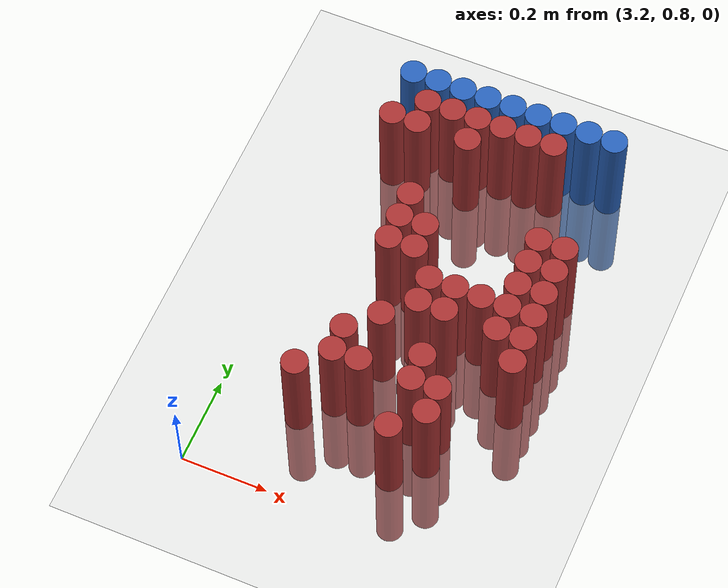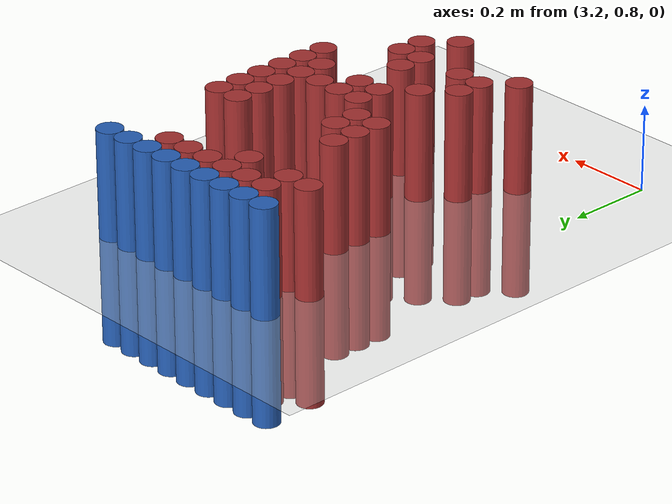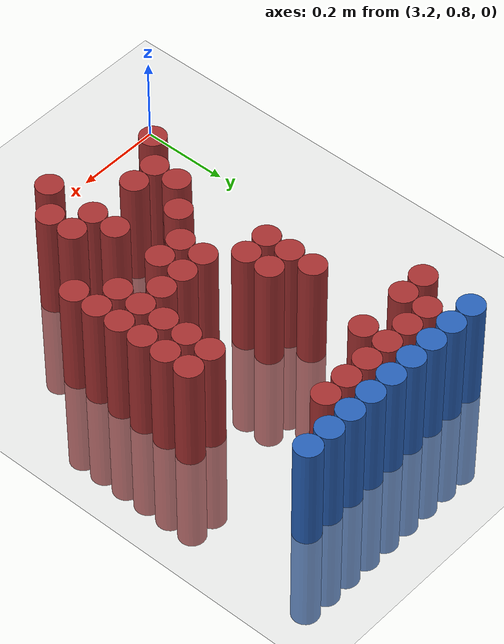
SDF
<sdf version="1.6">
 <world name="default">
  <model name="ground_plane">
   <static>1</static>
   <link name="link">
    <collision name="collision">
     <geometry><plane><normal>0 0 1</normal><size>100 100</size></plane></geometry>
     <surface><friction><ode><mu>100</mu><mu2>50</mu2></ode></friction></surface>
    </collision>
    <visual name="visual">
     <cast_shadows>0</cast_shadows>
     <geometry><plane><normal>0 0 1</normal><size>100 100</size></plane></geometry>
     <material>
      <script><uri>file://media/materials/scripts/gazebo.material</uri><name>Gazebo/Grey</name></script>
     </material>
    </visual>
   </link>
  </model>
  <model name="unit_cylinder_116">
   <static>1</static>
   <pose>3.330000 1.770000 0.000000 0.000000 0.000000 0.000000</pose>
   <link name="link">
    <inertial>
     <mass>1</mass>
     <inertia><ixx>0.145833</ixx><ixy>0</ixy><ixz>0</ixz><iyy>0.145833</iyy><iyz>0</iyz><izz>0.125</izz></inertia>
    </inertial>
    <collision name="collision">
     <geometry><cylinder><radius>0.030000</radius><length>0.5</length></cylinder></geometry>
    </collision>
    <visual name="visual">
     <geometry><cylinder><radius>0.030000</radius><length>0.5</length></cylinder></geometry>
     <material>
      <ambient>0.152000 0.379000 0.720000 1</ambient>
      <diffuse>0.152000 0.379000 0.720000 1</diffuse>
     </material>
     <material>
      <script><name>Gazebo/Grey</name><uri>file://media/materials/scripts/gazebo.material</uri></script>
     </material>
    </visual>
   </link>
  </model>
  <model name="unit_cylinder_117">
   <static>1</static>
   <pose>3.390000 1.770000 0.000000 0.000000 0.000000 0.000000</pose>
   <link name="link">
    <inertial>
     <mass>1</mass>
     <inertia><ixx>0.145833</ixx><ixy>0</ixy><ixz>0</ixz><iyy>0.145833</iyy><iyz>0</iyz><izz>0.125</izz></inertia>
    </inertial>
    <collision name="collision">
     <geometry><cylinder><radius>0.030000</radius><length>0.5</length></cylinder></geometry>
    </collision>
    <visual name="visual">
     <geometry><cylinder><radius>0.030000</radius><length>0.5</length></cylinder></geometry>
     <material>
      <ambient>0.152000 0.379000 0.720000 1</ambient>
      <diffuse>0.152000 0.379000 0.720000 1</diffuse>
     </material>
     <material>
      <script><name>Gazebo/Grey</name><uri>file://media/materials/scripts/gazebo.material</uri></script>
     </material>
    </visual>
   </link>
  </model>
  <model name="unit_cylinder_118">
   <static>1</static>
   <pose>3.450000 1.770000 0.000000 0.000000 0.000000 0.000000</pose>
   <link name="link">
    <inertial>
     <mass>1</mass>
     <inertia><ixx>0.145833</ixx><ixy>0</ixy><ixz>0</ixz><iyy>0.145833</iyy><iyz>0</iyz><izz>0.125</izz></inertia>
    </inertial>
    <collision name="collision">
     <geometry><cylinder><radius>0.030000</radius><length>0.5</length></cylinder></geometry>
    </collision>
    <visual name="visual">
     <geometry><cylinder><radius>0.030000</radius><length>0.5</length></cylinder></geometry>
     <material>
      <ambient>0.152000 0.379000 0.720000 1</ambient>
      <diffuse>0.152000 0.379000 0.720000 1</diffuse>
     </material>
     <material>
      <script><name>Gazebo/Grey</name><uri>file://media/materials/scripts/gazebo.material</uri></script>
     </material>
    </visual>
   </link>
  </model>
  <model name="unit_cylinder_119">
   <static>1</static>
   <pose>3.510000 1.770000 0.000000 0.000000 0.000000 0.000000</pose>
   <link name="link">
    <inertial>
     <mass>1</mass>
     <inertia><ixx>0.145833</ixx><ixy>0</ixy><ixz>0</ixz><iyy>0.145833</iyy><iyz>0</iyz><izz>0.125</izz></inertia>
    </inertial>
    <collision name="collision">
     <geometry><cylinder><radius>0.030000</radius><length>0.5</length></cylinder></geometry>
    </collision>
    <visual name="visual">
     <geometry><cylinder><radius>0.030000</radius><length>0.5</length></cylinder></geometry>
     <material>
      <ambient>0.152000 0.379000 0.720000 1</ambient>
      <diffuse>0.152000 0.379000 0.720000 1</diffuse>
     </material>
     <material>
      <script><name>Gazebo/Grey</name><uri>file://media/materials/scripts/gazebo.material</uri></script>
     </material>
    </visual>
   </link>
  </model>
  <model name="unit_cylinder_120">
   <static>1</static>
   <pose>3.570000 1.770000 0.000000 0.000000 0.000000 0.000000</pose>
   <link name="link">
    <inertial>
     <mass>1</mass>
     <inertia><ixx>0.145833</ixx><ixy>0</ixy><ixz>0</ixz><iyy>0.145833</iyy><iyz>0</iyz><izz>0.125</izz></inertia>
    </inertial>
    <collision name="collision">
     <geometry><cylinder><radius>0.030000</radius><length>0.5</length></cylinder></geometry>
    </collision>
    <visual name="visual">
     <geometry><cylinder><radius>0.030000</radius><length>0.5</length></cylinder></geometry>
     <material>
      <ambient>0.152000 0.379000 0.720000 1</ambient>
      <diffuse>0.152000 0.379000 0.720000 1</diffuse>
     </material>
     <material>
      <script><name>Gazebo/Grey</name><uri>file://media/materials/scripts/gazebo.material</uri></script>
     </material>
    </visual>
   </link>
  </model>
  <model name="unit_cylinder_121">
   <static>1</static>
   <pose>3.630000 1.770000 0.000000 0.000000 0.000000 0.000000</pose>
   <link name="link">
    <inertial>
     <mass>1</mass>
     <inertia><ixx>0.145833</ixx><ixy>0</ixy><ixz>0</ixz><iyy>0.145833</iyy><iyz>0</iyz><izz>0.125</izz></inertia>
    </inertial>
    <collision name="collision">
     <geometry><cylinder><radius>0.030000</radius><length>0.5</length></cylinder></geometry>
    </collision>
    <visual name="visual">
     <geometry><cylinder><radius>0.030000</radius><length>0.5</length></cylinder></geometry>
     <material>
      <ambient>0.152000 0.379000 0.720000 1</ambient>
      <diffuse>0.152000 0.379000 0.720000 1</diffuse>
     </material>
     <material>
      <script><name>Gazebo/Grey</name><uri>file://media/materials/scripts/gazebo.material</uri></script>
     </material>
    </visual>
   </link>
  </model>
  <model name="unit_cylinder_122">
   <static>1</static>
   <pose>3.690000 1.770000 0.000000 0.000000 0.000000 0.000000</pose>
   <link name="link">
    <inertial>
     <mass>1</mass>
     <inertia><ixx>0.145833</ixx><ixy>0</ixy><ixz>0</ixz><iyy>0.145833</iyy><iyz>0</iyz><izz>0.125</izz></inertia>
    </inertial>
    <collision name="collision">
     <geometry><cylinder><radius>0.030000</radius><length>0.5</length></cylinder></geometry>
    </collision>
    <visual name="visual">
     <geometry><cylinder><radius>0.030000</radius><length>0.5</length></cylinder></geometry>
     <material>
      <ambient>0.152000 0.379000 0.720000 1</ambient>
      <diffuse>0.152000 0.379000 0.720000 1</diffuse>
     </material>
     <material>
      <script><name>Gazebo/Grey</name><uri>file://media/materials/scripts/gazebo.material</uri></script>
     </material>
    </visual>
   </link>
  </model>
  <model name="unit_cylinder_123">
   <static>1</static>
   <pose>3.750000 1.770000 0.000000 0.000000 0.000000 0.000000</pose>
   <link name="link">
    <inertial>
     <mass>1</mass>
     <inertia><ixx>0.145833</ixx><ixy>0</ixy><ixz>0</ixz><iyy>0.145833</iyy><iyz>0</iyz><izz>0.125</izz></inertia>
    </inertial>
    <collision name="collision">
     <geometry><cylinder><radius>0.030000</radius><length>0.5</length></cylinder></geometry>
    </collision>
    <visual name="visual">
     <geometry><cylinder><radius>0.030000</radius><length>0.5</length></cylinder></geometry>
     <material>
      <ambient>0.152000 0.379000 0.720000 1</ambient>
      <diffuse>0.152000 0.379000 0.720000 1</diffuse>
     </material>
     <material>
      <script><name>Gazebo/Grey</name><uri>file://media/materials/scripts/gazebo.material</uri></script>
     </material>
    </visual>
   </link>
  </model>
  <model name="unit_cylinder_124">
   <static>1</static>
   <pose>3.810000 1.770000 0.000000 0.000000 0.000000 0.000000</pose>
   <link name="link">
    <inertial>
     <mass>1</mass>
     <inertia><ixx>0.145833</ixx><ixy>0</ixy><ixz>0</ixz><iyy>0.145833</iyy><iyz>0</iyz><izz>0.125</izz></inertia>
    </inertial>
    <collision name="collision">
     <geometry><cylinder><radius>0.030000</radius><length>0.5</length></cylinder></geometry>
    </collision>
    <visual name="visual">
     <geometry><cylinder><radius>0.030000</radius><length>0.5</length></cylinder></geometry>
     <material>
      <ambient>0.152000 0.379000 0.720000 1</ambient>
      <diffuse>0.152000 0.379000 0.720000 1</diffuse>
     </material>
     <material>
      <script><name>Gazebo/Grey</name><uri>file://media/materials/scripts/gazebo.material</uri></script>
     </material>
    </visual>
   </link>
  </model>
  <model name="unit_cylinder_141">
   <static>1</static>
   <pose>3.390000 1.710000 0.000000 0.000000 0.000000 0.000000</pose>
   <link name="link">
    <inertial>
     <mass>1</mass>
     <inertia><ixx>0.145833</ixx><ixy>0</ixy><ixz>0</ixz><iyy>0.145833</iyy><iyz>0</iyz><izz>0.125</izz></inertia>
    </inertial>
    <collision name="collision">
     <geometry><cylinder><radius>0.030000</radius><length>0.5</length></cylinder></geometry>
    </collision>
    <visual name="visual">
     <geometry><cylinder><radius>0.030000</radius><length>0.5</length></cylinder></geometry>
     <material>
      <ambient>0.648000 0.192000 0.192000 1</ambient>
      <diffuse>0.648000 0.192000 0.192000 1</diffuse>
     </material>
     <material>
      <script><name>Gazebo/Grey</name><uri>file://media/materials/scripts/gazebo.material</uri></script>
     </material>
    </visual>
   </link>
  </model>
  <model name="unit_cylinder_142">
   <static>1</static>
   <pose>3.450000 1.710000 0.000000 0.000000 0.000000 0.000000</pose>
   <link name="link">
    <inertial>
     <mass>1</mass>
     <inertia><ixx>0.145833</ixx><ixy>0</ixy><ixz>0</ixz><iyy>0.145833</iyy><iyz>0</iyz><izz>0.125</izz></inertia>
    </inertial>
    <collision name="collision">
     <geometry><cylinder><radius>0.030000</radius><length>0.5</length></cylinder></geometry>
    </collision>
    <visual name="visual">
     <geometry><cylinder><radius>0.030000</radius><length>0.5</length></cylinder></geometry>
     <material>
      <ambient>0.648000 0.192000 0.192000 1</ambient>
      <diffuse>0.648000 0.192000 0.192000 1</diffuse>
     </material>
     <material>
      <script><name>Gazebo/Grey</name><uri>file://media/materials/scripts/gazebo.material</uri></script>
     </material>
    </visual>
   </link>
  </model>
  <model name="unit_cylinder_143">
   <static>1</static>
   <pose>3.510000 1.710000 0.000000 0.000000 0.000000 0.000000</pose>
   <link name="link">
    <inertial>
     <mass>1</mass>
     <inertia><ixx>0.145833</ixx><ixy>0</ixy><ixz>0</ixz><iyy>0.145833</iyy><iyz>0</iyz><izz>0.125</izz></inertia>
    </inertial>
    <collision name="collision">
     <geometry><cylinder><radius>0.030000</radius><length>0.5</length></cylinder></geometry>
    </collision>
    <visual name="visual">
     <geometry><cylinder><radius>0.030000</radius><length>0.5</length></cylinder></geometry>
     <material>
      <ambient>0.648000 0.192000 0.192000 1</ambient>
      <diffuse>0.648000 0.192000 0.192000 1</diffuse>
     </material>
     <material>
      <script><name>Gazebo/Grey</name><uri>file://media/materials/scripts/gazebo.material</uri></script>
     </material>
    </visual>
   </link>
  </model>
  <model name="unit_cylinder_144">
   <static>1</static>
   <pose>3.570000 1.710000 0.000000 0.000000 0.000000 0.000000</pose>
   <link name="link">
    <inertial>
     <mass>1</mass>
     <inertia><ixx>0.145833</ixx><ixy>0</ixy><ixz>0</ixz><iyy>0.145833</iyy><iyz>0</iyz><izz>0.125</izz></inertia>
    </inertial>
    <collision name="collision">
     <geometry><cylinder><radius>0.030000</radius><length>0.5</length></cylinder></geometry>
    </collision>
    <visual name="visual">
     <geometry><cylinder><radius>0.030000</radius><length>0.5</length></cylinder></geometry>
     <material>
      <ambient>0.648000 0.192000 0.192000 1</ambient>
      <diffuse>0.648000 0.192000 0.192000 1</diffuse>
     </material>
     <material>
      <script><name>Gazebo/Grey</name><uri>file://media/materials/scripts/gazebo.material</uri></script>
     </material>
    </visual>
   </link>
  </model>
  <model name="unit_cylinder_145">
   <static>1</static>
   <pose>3.630000 1.710000 0.000000 0.000000 0.000000 0.000000</pose>
   <link name="link">
    <inertial>
     <mass>1</mass>
     <inertia><ixx>0.145833</ixx><ixy>0</ixy><ixz>0</ixz><iyy>0.145833</iyy><iyz>0</iyz><izz>0.125</izz></inertia>
    </inertial>
    <collision name="collision">
     <geometry><cylinder><radius>0.030000</radius><length>0.5</length></cylinder></geometry>
    </collision>
    <visual name="visual">
     <geometry><cylinder><radius>0.030000</radius><length>0.5</length></cylinder></geometry>
     <material>
      <ambient>0.648000 0.192000 0.192000 1</ambient>
      <diffuse>0.648000 0.192000 0.192000 1</diffuse>
     </material>
     <material>
      <script><name>Gazebo/Grey</name><uri>file://media/materials/scripts/gazebo.material</uri></script>
     </material>
    </visual>
   </link>
  </model>
  <model name="unit_cylinder_146">
   <static>1</static>
   <pose>3.690000 1.710000 0.000000 0.000000 0.000000 0.000000</pose>
   <link name="link">
    <inertial>
     <mass>1</mass>
     <inertia><ixx>0.145833</ixx><ixy>0</ixy><ixz>0</ixz><iyy>0.145833</iyy><iyz>0</iyz><izz>0.125</izz></inertia>
    </inertial>
    <collision name="collision">
     <geometry><cylinder><radius>0.030000</radius><length>0.5</length></cylinder></geometry>
    </collision>
    <visual name="visual">
     <geometry><cylinder><radius>0.030000</radius><length>0.5</length></cylinder></geometry>
     <material>
      <ambient>0.648000 0.192000 0.192000 1</ambient>
      <diffuse>0.648000 0.192000 0.192000 1</diffuse>
     </material>
     <material>
      <script><name>Gazebo/Grey</name><uri>file://media/materials/scripts/gazebo.material</uri></script>
     </material>
    </visual>
   </link>
  </model>
  <model name="unit_cylinder_152">
   <static>1</static>
   <pose>3.330000 1.650000 0.000000 0.000000 0.000000 0.000000</pose>
   <link name="link">
    <inertial>
     <mass>1</mass>
     <inertia><ixx>0.145833</ixx><ixy>0</ixy><ixz>0</ixz><iyy>0.145833</iyy><iyz>0</iyz><izz>0.125</izz></inertia>
    </inertial>
    <collision name="collision">
     <geometry><cylinder><radius>0.030000</radius><length>0.5</length></cylinder></geometry>
    </collision>
    <visual name="visual">
     <geometry><cylinder><radius>0.030000</radius><length>0.5</length></cylinder></geometry>
     <material>
      <ambient>0.648000 0.192000 0.192000 1</ambient>
      <diffuse>0.648000 0.192000 0.192000 1</diffuse>
     </material>
     <material>
      <script><name>Gazebo/Grey</name><uri>file://media/materials/scripts/gazebo.material</uri></script>
     </material>
    </visual>
   </link>
  </model>
  <model name="unit_cylinder_153">
   <static>1</static>
   <pose>3.390000 1.650000 0.000000 0.000000 0.000000 0.000000</pose>
   <link name="link">
    <inertial>
     <mass>1</mass>
     <inertia><ixx>0.145833</ixx><ixy>0</ixy><ixz>0</ixz><iyy>0.145833</iyy><iyz>0</iyz><izz>0.125</izz></inertia>
    </inertial>
    <collision name="collision">
     <geometry><cylinder><radius>0.030000</radius><length>0.5</length></cylinder></geometry>
    </collision>
    <visual name="visual">
     <geometry><cylinder><radius>0.030000</radius><length>0.5</length></cylinder></geometry>
     <material>
      <ambient>0.648000 0.192000 0.192000 1</ambient>
      <diffuse>0.648000 0.192000 0.192000 1</diffuse>
     </material>
     <material>
      <script><name>Gazebo/Grey</name><uri>file://media/materials/scripts/gazebo.material</uri></script>
     </material>
    </visual>
   </link>
  </model>
  <model name="unit_cylinder_154">
   <static>1</static>
   <pose>3.510000 1.650000 0.000000 0.000000 0.000000 0.000000</pose>
   <link name="link">
    <inertial>
     <mass>1</mass>
     <inertia><ixx>0.145833</ixx><ixy>0</ixy><ixz>0</ixz><iyy>0.145833</iyy><iyz>0</iyz><izz>0.125</izz></inertia>
    </inertial>
    <collision name="collision">
     <geometry><cylinder><radius>0.030000</radius><length>0.5</length></cylinder></geometry>
    </collision>
    <visual name="visual">
     <geometry><cylinder><radius>0.030000</radius><length>0.5</length></cylinder></geometry>
     <material>
      <ambient>0.648000 0.192000 0.192000 1</ambient>
      <diffuse>0.648000 0.192000 0.192000 1</diffuse>
     </material>
     <material>
      <script><name>Gazebo/Grey</name><uri>file://media/materials/scripts/gazebo.material</uri></script>
     </material>
    </visual>
   </link>
  </model>
  <model name="unit_cylinder_168">
   <static>1</static>
   <pose>3.450000 1.470000 0.000000 0.000000 0.000000 0.000000</pose>
   <link name="link">
    <inertial>
     <mass>1</mass>
     <inertia><ixx>0.145833</ixx><ixy>0</ixy><ixz>0</ixz><iyy>0.145833</iyy><iyz>0</iyz><izz>0.125</izz></inertia>
    </inertial>
    <collision name="collision">
     <geometry><cylinder><radius>0.030000</radius><length>0.5</length></cylinder></geometry>
    </collision>
    <visual name="visual">
     <geometry><cylinder><radius>0.030000</radius><length>0.5</length></cylinder></geometry>
     <material>
      <ambient>0.648000 0.192000 0.192000 1</ambient>
      <diffuse>0.648000 0.192000 0.192000 1</diffuse>
     </material>
     <material>
      <script><name>Gazebo/Grey</name><uri>file://media/materials/scripts/gazebo.material</uri></script>
     </material>
    </visual>
   </link>
  </model>
  <model name="unit_cylinder_169">
   <static>1</static>
   <pose>3.750000 1.470000 0.000000 0.000000 0.000000 0.000000</pose>
   <link name="link">
    <inertial>
     <mass>1</mass>
     <inertia><ixx>0.145833</ixx><ixy>0</ixy><ixz>0</ixz><iyy>0.145833</iyy><iyz>0</iyz><izz>0.125</izz></inertia>
    </inertial>
    <collision name="collision">
     <geometry><cylinder><radius>0.030000</radius><length>0.5</length></cylinder></geometry>
    </collision>
    <visual name="visual">
     <geometry><cylinder><radius>0.030000</radius><length>0.5</length></cylinder></geometry>
     <material>
      <ambient>0.648000 0.192000 0.192000 1</ambient>
      <diffuse>0.648000 0.192000 0.192000 1</diffuse>
     </material>
     <material>
      <script><name>Gazebo/Grey</name><uri>file://media/materials/scripts/gazebo.material</uri></script>
     </material>
    </visual>
   </link>
  </model>
  <model name="unit_cylinder_170">
   <static>1</static>
   <pose>3.810000 1.470000 0.000000 0.000000 0.000000 0.000000</pose>
   <link name="link">
    <inertial>
     <mass>1</mass>
     <inertia><ixx>0.145833</ixx><ixy>0</ixy><ixz>0</ixz><iyy>0.145833</iyy><iyz>0</iyz><izz>0.125</izz></inertia>
    </inertial>
    <collision name="collision">
     <geometry><cylinder><radius>0.030000</radius><length>0.5</length></cylinder></geometry>
    </collision>
    <visual name="visual">
     <geometry><cylinder><radius>0.030000</radius><length>0.5</length></cylinder></geometry>
     <material>
      <ambient>0.648000 0.192000 0.192000 1</ambient>
      <diffuse>0.648000 0.192000 0.192000 1</diffuse>
     </material>
     <material>
      <script><name>Gazebo/Grey</name><uri>file://media/materials/scripts/gazebo.material</uri></script>
     </material>
    </visual>
   </link>
  </model>
  <model name="unit_cylinder_177">
   <static>1</static>
   <pose>3.450000 1.410000 0.000000 0.000000 0.000000 0.000000</pose>
   <link name="link">
    <inertial>
     <mass>1</mass>
     <inertia><ixx>0.145833</ixx><ixy>0</ixy><ixz>0</ixz><iyy>0.145833</iyy><iyz>0</iyz><izz>0.125</izz></inertia>
    </inertial>
    <collision name="collision">
     <geometry><cylinder><radius>0.030000</radius><length>0.5</length></cylinder></geometry>
    </collision>
    <visual name="visual">
     <geometry><cylinder><radius>0.030000</radius><length>0.5</length></cylinder></geometry>
     <material>
      <ambient>0.648000 0.192000 0.192000 1</ambient>
      <diffuse>0.648000 0.192000 0.192000 1</diffuse>
     </material>
     <material>
      <script><name>Gazebo/Grey</name><uri>file://media/materials/scripts/gazebo.material</uri></script>
     </material>
    </visual>
   </link>
  </model>
  <model name="unit_cylinder_178">
   <static>1</static>
   <pose>3.510000 1.410000 0.000000 0.000000 0.000000 0.000000</pose>
   <link name="link">
    <inertial>
     <mass>1</mass>
     <inertia><ixx>0.145833</ixx><ixy>0</ixy><ixz>0</ixz><iyy>0.145833</iyy><iyz>0</iyz><izz>0.125</izz></inertia>
    </inertial>
    <collision name="collision">
     <geometry><cylinder><radius>0.030000</radius><length>0.5</length></cylinder></geometry>
    </collision>
    <visual name="visual">
     <geometry><cylinder><radius>0.030000</radius><length>0.5</length></cylinder></geometry>
     <material>
      <ambient>0.648000 0.192000 0.192000 1</ambient>
      <diffuse>0.648000 0.192000 0.192000 1</diffuse>
     </material>
     <material>
      <script><name>Gazebo/Grey</name><uri>file://media/materials/scripts/gazebo.material</uri></script>
     </material>
    </visual>
   </link>
  </model>
  <model name="unit_cylinder_179">
   <static>1</static>
   <pose>3.750000 1.410000 0.000000 0.000000 0.000000 0.000000</pose>
   <link name="link">
    <inertial>
     <mass>1</mass>
     <inertia><ixx>0.145833</ixx><ixy>0</ixy><ixz>0</ixz><iyy>0.145833</iyy><iyz>0</iyz><izz>0.125</izz></inertia>
    </inertial>
    <collision name="collision">
     <geometry><cylinder><radius>0.030000</radius><length>0.5</length></cylinder></geometry>
    </collision>
    <visual name="visual">
     <geometry><cylinder><radius>0.030000</radius><length>0.5</length></cylinder></geometry>
     <material>
      <ambient>0.648000 0.192000 0.192000 1</ambient>
      <diffuse>0.648000 0.192000 0.192000 1</diffuse>
     </material>
     <material>
      <script><name>Gazebo/Grey</name><uri>file://media/materials/scripts/gazebo.material</uri></script>
     </material>
    </visual>
   </link>
  </model>
  <model name="unit_cylinder_180">
   <static>1</static>
   <pose>3.810000 1.410000 0.000000 0.000000 0.000000 0.000000</pose>
   <link name="link">
    <inertial>
     <mass>1</mass>
     <inertia><ixx>0.145833</ixx><ixy>0</ixy><ixz>0</ixz><iyy>0.145833</iyy><iyz>0</iyz><izz>0.125</izz></inertia>
    </inertial>
    <collision name="collision">
     <geometry><cylinder><radius>0.030000</radius><length>0.5</length></cylinder></geometry>
    </collision>
    <visual name="visual">
     <geometry><cylinder><radius>0.030000</radius><length>0.5</length></cylinder></geometry>
     <material>
      <ambient>0.648000 0.192000 0.192000 1</ambient>
      <diffuse>0.648000 0.192000 0.192000 1</diffuse>
     </material>
     <material>
      <script><name>Gazebo/Grey</name><uri>file://media/materials/scripts/gazebo.material</uri></script>
     </material>
    </visual>
   </link>
  </model>
  <model name="unit_cylinder_188">
   <static>1</static>
   <pose>3.450000 1.350000 0.000000 0.000000 0.000000 0.000000</pose>
   <link name="link">
    <inertial>
     <mass>1</mass>
     <inertia><ixx>0.145833</ixx><ixy>0</ixy><ixz>0</ixz><iyy>0.145833</iyy><iyz>0</iyz><izz>0.125</izz></inertia>
    </inertial>
    <collision name="collision">
     <geometry><cylinder><radius>0.030000</radius><length>0.5</length></cylinder></geometry>
    </collision>
    <visual name="visual">
     <geometry><cylinder><radius>0.030000</radius><length>0.5</length></cylinder></geometry>
     <material>
      <ambient>0.648000 0.192000 0.192000 1</ambient>
      <diffuse>0.648000 0.192000 0.192000 1</diffuse>
     </material>
     <material>
      <script><name>Gazebo/Grey</name><uri>file://media/materials/scripts/gazebo.material</uri></script>
     </material>
    </visual>
   </link>
  </model>
  <model name="unit_cylinder_189">
   <static>1</static>
   <pose>3.510000 1.350000 0.000000 0.000000 0.000000 0.000000</pose>
   <link name="link">
    <inertial>
     <mass>1</mass>
     <inertia><ixx>0.145833</ixx><ixy>0</ixy><ixz>0</ixz><iyy>0.145833</iyy><iyz>0</iyz><izz>0.125</izz></inertia>
    </inertial>
    <collision name="collision">
     <geometry><cylinder><radius>0.030000</radius><length>0.5</length></cylinder></geometry>
    </collision>
    <visual name="visual">
     <geometry><cylinder><radius>0.030000</radius><length>0.5</length></cylinder></geometry>
     <material>
      <ambient>0.648000 0.192000 0.192000 1</ambient>
      <diffuse>0.648000 0.192000 0.192000 1</diffuse>
     </material>
     <material>
      <script><name>Gazebo/Grey</name><uri>file://media/materials/scripts/gazebo.material</uri></script>
     </material>
    </visual>
   </link>
  </model>
  <model name="unit_cylinder_190">
   <static>1</static>
   <pose>3.750000 1.350000 0.000000 0.000000 0.000000 0.000000</pose>
   <link name="link">
    <inertial>
     <mass>1</mass>
     <inertia><ixx>0.145833</ixx><ixy>0</ixy><ixz>0</ixz><iyy>0.145833</iyy><iyz>0</iyz><izz>0.125</izz></inertia>
    </inertial>
    <collision name="collision">
     <geometry><cylinder><radius>0.030000</radius><length>0.5</length></cylinder></geometry>
    </collision>
    <visual name="visual">
     <geometry><cylinder><radius>0.030000</radius><length>0.5</length></cylinder></geometry>
     <material>
      <ambient>0.648000 0.192000 0.192000 1</ambient>
      <diffuse>0.648000 0.192000 0.192000 1</diffuse>
     </material>
     <material>
      <script><name>Gazebo/Grey</name><uri>file://media/materials/scripts/gazebo.material</uri></script>
     </material>
    </visual>
   </link>
  </model>
  <model name="unit_cylinder_191">
   <static>1</static>
   <pose>3.810000 1.350000 0.000000 0.000000 0.000000 0.000000</pose>
   <link name="link">
    <inertial>
     <mass>1</mass>
     <inertia><ixx>0.145833</ixx><ixy>0</ixy><ixz>0</ixz><iyy>0.145833</iyy><iyz>0</iyz><izz>0.125</izz></inertia>
    </inertial>
    <collision name="collision">
     <geometry><cylinder><radius>0.030000</radius><length>0.5</length></cylinder></geometry>
    </collision>
    <visual name="visual">
     <geometry><cylinder><radius>0.030000</radius><length>0.5</length></cylinder></geometry>
     <material>
      <ambient>0.648000 0.192000 0.192000 1</ambient>
      <diffuse>0.648000 0.192000 0.192000 1</diffuse>
     </material>
     <material>
      <script><name>Gazebo/Grey</name><uri>file://media/materials/scripts/gazebo.material</uri></script>
     </material>
    </visual>
   </link>
  </model>
  <model name="unit_cylinder_196">
   <static>1</static>
   <pose>3.570000 1.290000 0.000000 0.000000 0.000000 0.000000</pose>
   <link name="link">
    <inertial>
     <mass>1</mass>
     <inertia><ixx>0.145833</ixx><ixy>0</ixy><ixz>0</ixz><iyy>0.145833</iyy><iyz>0</iyz><izz>0.125</izz></inertia>
    </inertial>
    <collision name="collision">
     <geometry><cylinder><radius>0.030000</radius><length>0.5</length></cylinder></geometry>
    </collision>
    <visual name="visual">
     <geometry><cylinder><radius>0.030000</radius><length>0.5</length></cylinder></geometry>
     <material>
      <ambient>0.648000 0.192000 0.192000 1</ambient>
      <diffuse>0.648000 0.192000 0.192000 1</diffuse>
     </material>
     <material>
      <script><name>Gazebo/Grey</name><uri>file://media/materials/scripts/gazebo.material</uri></script>
     </material>
    </visual>
   </link>
  </model>
  <model name="unit_cylinder_197">
   <static>1</static>
   <pose>3.630000 1.290000 0.000000 0.000000 0.000000 0.000000</pose>
   <link name="link">
    <inertial>
     <mass>1</mass>
     <inertia><ixx>0.145833</ixx><ixy>0</ixy><ixz>0</ixz><iyy>0.145833</iyy><iyz>0</iyz><izz>0.125</izz></inertia>
    </inertial>
    <collision name="collision">
     <geometry><cylinder><radius>0.030000</radius><length>0.5</length></cylinder></geometry>
    </collision>
    <visual name="visual">
     <geometry><cylinder><radius>0.030000</radius><length>0.5</length></cylinder></geometry>
     <material>
      <ambient>0.648000 0.192000 0.192000 1</ambient>
      <diffuse>0.648000 0.192000 0.192000 1</diffuse>
     </material>
     <material>
      <script><name>Gazebo/Grey</name><uri>file://media/materials/scripts/gazebo.material</uri></script>
     </material>
    </visual>
   </link>
  </model>
  <model name="unit_cylinder_198">
   <static>1</static>
   <pose>3.690000 1.290000 0.000000 0.000000 0.000000 0.000000</pose>
   <link name="link">
    <inertial>
     <mass>1</mass>
     <inertia><ixx>0.145833</ixx><ixy>0</ixy><ixz>0</ixz><iyy>0.145833</iyy><iyz>0</iyz><izz>0.125</izz></inertia>
    </inertial>
    <collision name="collision">
     <geometry><cylinder><radius>0.030000</radius><length>0.5</length></cylinder></geometry>
    </collision>
    <visual name="visual">
     <geometry><cylinder><radius>0.030000</radius><length>0.5</length></cylinder></geometry>
     <material>
      <ambient>0.648000 0.192000 0.192000 1</ambient>
      <diffuse>0.648000 0.192000 0.192000 1</diffuse>
     </material>
     <material>
      <script><name>Gazebo/Grey</name><uri>file://media/materials/scripts/gazebo.material</uri></script>
     </material>
    </visual>
   </link>
  </model>
  <model name="unit_cylinder_199">
   <static>1</static>
   <pose>3.750000 1.290000 0.000000 0.000000 0.000000 0.000000</pose>
   <link name="link">
    <inertial>
     <mass>1</mass>
     <inertia><ixx>0.145833</ixx><ixy>0</ixy><ixz>0</ixz><iyy>0.145833</iyy><iyz>0</iyz><izz>0.125</izz></inertia>
    </inertial>
    <collision name="collision">
     <geometry><cylinder><radius>0.030000</radius><length>0.5</length></cylinder></geometry>
    </collision>
    <visual name="visual">
     <geometry><cylinder><radius>0.030000</radius><length>0.5</length></cylinder></geometry>
     <material>
      <ambient>0.648000 0.192000 0.192000 1</ambient>
      <diffuse>0.648000 0.192000 0.192000 1</diffuse>
     </material>
     <material>
      <script><name>Gazebo/Grey</name><uri>file://media/materials/scripts/gazebo.material</uri></script>
     </material>
    </visual>
   </link>
  </model>
  <model name="unit_cylinder_200">
   <static>1</static>
   <pose>3.810000 1.290000 0.000000 0.000000 0.000000 0.000000</pose>
   <link name="link">
    <inertial>
     <mass>1</mass>
     <inertia><ixx>0.145833</ixx><ixy>0</ixy><ixz>0</ixz><iyy>0.145833</iyy><iyz>0</iyz><izz>0.125</izz></inertia>
    </inertial>
    <collision name="collision">
     <geometry><cylinder><radius>0.030000</radius><length>0.5</length></cylinder></geometry>
    </collision>
    <visual name="visual">
     <geometry><cylinder><radius>0.030000</radius><length>0.5</length></cylinder></geometry>
     <material>
      <ambient>0.648000 0.192000 0.192000 1</ambient>
      <diffuse>0.648000 0.192000 0.192000 1</diffuse>
     </material>
     <material>
      <script><name>Gazebo/Grey</name><uri>file://media/materials/scripts/gazebo.material</uri></script>
     </material>
    </visual>
   </link>
  </model>
  <model name="unit_cylinder_203">
   <static>1</static>
   <pose>3.570000 1.230000 0.000000 0.000000 0.000000 0.000000</pose>
   <link name="link">
    <inertial>
     <mass>1</mass>
     <inertia><ixx>0.145833</ixx><ixy>0</ixy><ixz>0</ixz><iyy>0.145833</iyy><iyz>0</iyz><izz>0.125</izz></inertia>
    </inertial>
    <collision name="collision">
     <geometry><cylinder><radius>0.030000</radius><length>0.5</length></cylinder></geometry>
    </collision>
    <visual name="visual">
     <geometry><cylinder><radius>0.030000</radius><length>0.5</length></cylinder></geometry>
     <material>
      <ambient>0.648000 0.192000 0.192000 1</ambient>
      <diffuse>0.648000 0.192000 0.192000 1</diffuse>
     </material>
     <material>
      <script><name>Gazebo/Grey</name><uri>file://media/materials/scripts/gazebo.material</uri></script>
     </material>
    </visual>
   </link>
  </model>
  <model name="unit_cylinder_204">
   <static>1</static>
   <pose>3.630000 1.230000 0.000000 0.000000 0.000000 0.000000</pose>
   <link name="link">
    <inertial>
     <mass>1</mass>
     <inertia><ixx>0.145833</ixx><ixy>0</ixy><ixz>0</ixz><iyy>0.145833</iyy><iyz>0</iyz><izz>0.125</izz></inertia>
    </inertial>
    <collision name="collision">
     <geometry><cylinder><radius>0.030000</radius><length>0.5</length></cylinder></geometry>
    </collision>
    <visual name="visual">
     <geometry><cylinder><radius>0.030000</radius><length>0.5</length></cylinder></geometry>
     <material>
      <ambient>0.648000 0.192000 0.192000 1</ambient>
      <diffuse>0.648000 0.192000 0.192000 1</diffuse>
     </material>
     <material>
      <script><name>Gazebo/Grey</name><uri>file://media/materials/scripts/gazebo.material</uri></script>
     </material>
    </visual>
   </link>
  </model>
  <model name="unit_cylinder_205">
   <static>1</static>
   <pose>3.750000 1.230000 0.000000 0.000000 0.000000 0.000000</pose>
   <link name="link">
    <inertial>
     <mass>1</mass>
     <inertia><ixx>0.145833</ixx><ixy>0</ixy><ixz>0</ixz><iyy>0.145833</iyy><iyz>0</iyz><izz>0.125</izz></inertia>
    </inertial>
    <collision name="collision">
     <geometry><cylinder><radius>0.030000</radius><length>0.5</length></cylinder></geometry>
    </collision>
    <visual name="visual">
     <geometry><cylinder><radius>0.030000</radius><length>0.5</length></cylinder></geometry>
     <material>
      <ambient>0.648000 0.192000 0.192000 1</ambient>
      <diffuse>0.648000 0.192000 0.192000 1</diffuse>
     </material>
     <material>
      <script><name>Gazebo/Grey</name><uri>file://media/materials/scripts/gazebo.material</uri></script>
     </material>
    </visual>
   </link>
  </model>
  <model name="unit_cylinder_206">
   <static>1</static>
   <pose>3.810000 1.230000 0.000000 0.000000 0.000000 0.000000</pose>
   <link name="link">
    <inertial>
     <mass>1</mass>
     <inertia><ixx>0.145833</ixx><ixy>0</ixy><ixz>0</ixz><iyy>0.145833</iyy><iyz>0</iyz><izz>0.125</izz></inertia>
    </inertial>
    <collision name="collision">
     <geometry><cylinder><radius>0.030000</radius><length>0.5</length></cylinder></geometry>
    </collision>
    <visual name="visual">
     <geometry><cylinder><radius>0.030000</radius><length>0.5</length></cylinder></geometry>
     <material>
      <ambient>0.648000 0.192000 0.192000 1</ambient>
      <diffuse>0.648000 0.192000 0.192000 1</diffuse>
     </material>
     <material>
      <script><name>Gazebo/Grey</name><uri>file://media/materials/scripts/gazebo.material</uri></script>
     </material>
    </visual>
   </link>
  </model>
  <model name="unit_cylinder_207">
   <static>1</static>
   <pose>3.510000 1.170000 0.000000 0.000000 0.000000 0.000000</pose>
   <link name="link">
    <inertial>
     <mass>1</mass>
     <inertia><ixx>0.145833</ixx><ixy>0</ixy><ixz>0</ixz><iyy>0.145833</iyy><iyz>0</iyz><izz>0.125</izz></inertia>
    </inertial>
    <collision name="collision">
     <geometry><cylinder><radius>0.030000</radius><length>0.5</length></cylinder></geometry>
    </collision>
    <visual name="visual">
     <geometry><cylinder><radius>0.030000</radius><length>0.5</length></cylinder></geometry>
     <material>
      <ambient>0.648000 0.192000 0.192000 1</ambient>
      <diffuse>0.648000 0.192000 0.192000 1</diffuse>
     </material>
     <material>
      <script><name>Gazebo/Grey</name><uri>file://media/materials/scripts/gazebo.material</uri></script>
     </material>
    </visual>
   </link>
  </model>
  <model name="unit_cylinder_208">
   <static>1</static>
   <pose>3.810000 1.170000 0.000000 0.000000 0.000000 0.000000</pose>
   <link name="link">
    <inertial>
     <mass>1</mass>
     <inertia><ixx>0.145833</ixx><ixy>0</ixy><ixz>0</ixz><iyy>0.145833</iyy><iyz>0</iyz><izz>0.125</izz></inertia>
    </inertial>
    <collision name="collision">
     <geometry><cylinder><radius>0.030000</radius><length>0.5</length></cylinder></geometry>
    </collision>
    <visual name="visual">
     <geometry><cylinder><radius>0.030000</radius><length>0.5</length></cylinder></geometry>
     <material>
      <ambient>0.648000 0.192000 0.192000 1</ambient>
      <diffuse>0.648000 0.192000 0.192000 1</diffuse>
     </material>
     <material>
      <script><name>Gazebo/Grey</name><uri>file://media/materials/scripts/gazebo.material</uri></script>
     </material>
    </visual>
   </link>
  </model>
  <model name="unit_cylinder_209">
   <static>1</static>
   <pose>3.450000 1.110000 0.000000 0.000000 0.000000 0.000000</pose>
   <link name="link">
    <inertial>
     <mass>1</mass>
     <inertia><ixx>0.145833</ixx><ixy>0</ixy><ixz>0</ixz><iyy>0.145833</iyy><iyz>0</iyz><izz>0.125</izz></inertia>
    </inertial>
    <collision name="collision">
     <geometry><cylinder><radius>0.030000</radius><length>0.5</length></cylinder></geometry>
    </collision>
    <visual name="visual">
     <geometry><cylinder><radius>0.030000</radius><length>0.5</length></cylinder></geometry>
     <material>
      <ambient>0.648000 0.192000 0.192000 1</ambient>
      <diffuse>0.648000 0.192000 0.192000 1</diffuse>
     </material>
     <material>
      <script><name>Gazebo/Grey</name><uri>file://media/materials/scripts/gazebo.material</uri></script>
     </material>
    </visual>
   </link>
  </model>
  <model name="unit_cylinder_210">
   <static>1</static>
   <pose>3.630000 1.110000 0.000000 0.000000 0.000000 0.000000</pose>
   <link name="link">
    <inertial>
     <mass>1</mass>
     <inertia><ixx>0.145833</ixx><ixy>0</ixy><ixz>0</ixz><iyy>0.145833</iyy><iyz>0</iyz><izz>0.125</izz></inertia>
    </inertial>
    <collision name="collision">
     <geometry><cylinder><radius>0.030000</radius><length>0.5</length></cylinder></geometry>
    </collision>
    <visual name="visual">
     <geometry><cylinder><radius>0.030000</radius><length>0.5</length></cylinder></geometry>
     <material>
      <ambient>0.648000 0.192000 0.192000 1</ambient>
      <diffuse>0.648000 0.192000 0.192000 1</diffuse>
     </material>
     <material>
      <script><name>Gazebo/Grey</name><uri>file://media/materials/scripts/gazebo.material</uri></script>
     </material>
    </visual>
   </link>
  </model>
  <model name="unit_cylinder_211">
   <static>1</static>
   <pose>3.450000 1.050000 0.000000 0.000000 0.000000 0.000000</pose>
   <link name="link">
    <inertial>
     <mass>1</mass>
     <inertia><ixx>0.145833</ixx><ixy>0</ixy><ixz>0</ixz><iyy>0.145833</iyy><iyz>0</iyz><izz>0.125</izz></inertia>
    </inertial>
    <collision name="collision">
     <geometry><cylinder><radius>0.030000</radius><length>0.5</length></cylinder></geometry>
    </collision>
    <visual name="visual">
     <geometry><cylinder><radius>0.030000</radius><length>0.5</length></cylinder></geometry>
     <material>
      <ambient>0.648000 0.192000 0.192000 1</ambient>
      <diffuse>0.648000 0.192000 0.192000 1</diffuse>
     </material>
     <material>
      <script><name>Gazebo/Grey</name><uri>file://media/materials/scripts/gazebo.material</uri></script>
     </material>
    </visual>
   </link>
  </model>
  <model name="unit_cylinder_212">
   <static>1</static>
   <pose>3.510000 1.050000 0.000000 0.000000 0.000000 0.000000</pose>
   <link name="link">
    <inertial>
     <mass>1</mass>
     <inertia><ixx>0.145833</ixx><ixy>0</ixy><ixz>0</ixz><iyy>0.145833</iyy><iyz>0</iyz><izz>0.125</izz></inertia>
    </inertial>
    <collision name="collision">
     <geometry><cylinder><radius>0.030000</radius><length>0.5</length></cylinder></geometry>
    </collision>
    <visual name="visual">
     <geometry><cylinder><radius>0.030000</radius><length>0.5</length></cylinder></geometry>
     <material>
      <ambient>0.648000 0.192000 0.192000 1</ambient>
      <diffuse>0.648000 0.192000 0.192000 1</diffuse>
     </material>
     <material>
      <script><name>Gazebo/Grey</name><uri>file://media/materials/scripts/gazebo.material</uri></script>
     </material>
    </visual>
   </link>
  </model>
  <model name="unit_cylinder_213">
   <static>1</static>
   <pose>3.630000 1.050000 0.000000 0.000000 0.000000 0.000000</pose>
   <link name="link">
    <inertial>
     <mass>1</mass>
     <inertia><ixx>0.145833</ixx><ixy>0</ixy><ixz>0</ixz><iyy>0.145833</iyy><iyz>0</iyz><izz>0.125</izz></inertia>
    </inertial>
    <collision name="collision">
     <geometry><cylinder><radius>0.030000</radius><length>0.5</length></cylinder></geometry>
    </collision>
    <visual name="visual">
     <geometry><cylinder><radius>0.030000</radius><length>0.5</length></cylinder></geometry>
     <material>
      <ambient>0.648000 0.192000 0.192000 1</ambient>
      <diffuse>0.648000 0.192000 0.192000 1</diffuse>
     </material>
     <material>
      <script><name>Gazebo/Grey</name><uri>file://media/materials/scripts/gazebo.material</uri></script>
     </material>
    </visual>
   </link>
  </model>
  <model name="unit_cylinder_214">
   <static>1</static>
   <pose>3.690000 1.050000 0.000000 0.000000 0.000000 0.000000</pose>
   <link name="link">
    <inertial>
     <mass>1</mass>
     <inertia><ixx>0.145833</ixx><ixy>0</ixy><ixz>0</ixz><iyy>0.145833</iyy><iyz>0</iyz><izz>0.125</izz></inertia>
    </inertial>
    <collision name="collision">
     <geometry><cylinder><radius>0.030000</radius><length>0.5</length></cylinder></geometry>
    </collision>
    <visual name="visual">
     <geometry><cylinder><radius>0.030000</radius><length>0.5</length></cylinder></geometry>
     <material>
      <ambient>0.648000 0.192000 0.192000 1</ambient>
      <diffuse>0.648000 0.192000 0.192000 1</diffuse>
     </material>
     <material>
      <script><name>Gazebo/Grey</name><uri>file://media/materials/scripts/gazebo.material</uri></script>
     </material>
    </visual>
   </link>
  </model>
  <model name="unit_cylinder_216">
   <static>1</static>
   <pose>3.390000 0.990000 0.000000 0.000000 0.000000 0.000000</pose>
   <link name="link">
    <inertial>
     <mass>1</mass>
     <inertia><ixx>0.145833</ixx><ixy>0</ixy><ixz>0</ixz><iyy>0.145833</iyy><iyz>0</iyz><izz>0.125</izz></inertia>
    </inertial>
    <collision name="collision">
     <geometry><cylinder><radius>0.030000</radius><length>0.5</length></cylinder></geometry>
    </collision>
    <visual name="visual">
     <geometry><cylinder><radius>0.030000</radius><length>0.5</length></cylinder></geometry>
     <material>
      <ambient>0.648000 0.192000 0.192000 1</ambient>
      <diffuse>0.648000 0.192000 0.192000 1</diffuse>
     </material>
     <material>
      <script><name>Gazebo/Grey</name><uri>file://media/materials/scripts/gazebo.material</uri></script>
     </material>
    </visual>
   </link>
  </model>
  <model name="unit_cylinder_217">
   <static>1</static>
   <pose>3.690000 0.990000 0.000000 0.000000 0.000000 0.000000</pose>
   <link name="link">
    <inertial>
     <mass>1</mass>
     <inertia><ixx>0.145833</ixx><ixy>0</ixy><ixz>0</ixz><iyy>0.145833</iyy><iyz>0</iyz><izz>0.125</izz></inertia>
    </inertial>
    <collision name="collision">
     <geometry><cylinder><radius>0.030000</radius><length>0.5</length></cylinder></geometry>
    </collision>
    <visual name="visual">
     <geometry><cylinder><radius>0.030000</radius><length>0.5</length></cylinder></geometry>
     <material>
      <ambient>0.648000 0.192000 0.192000 1</ambient>
      <diffuse>0.648000 0.192000 0.192000 1</diffuse>
     </material>
     <material>
      <script><name>Gazebo/Grey</name><uri>file://media/materials/scripts/gazebo.material</uri></script>
     </material>
    </visual>
   </link>
  </model>
  <model name="unit_cylinder_222">
   <static>1</static>
   <pose>3.630000 0.930000 0.000000 0.000000 0.000000 0.000000</pose>
   <link name="link">
    <inertial>
     <mass>1</mass>
     <inertia><ixx>0.145833</ixx><ixy>0</ixy><ixz>0</ixz><iyy>0.145833</iyy><iyz>0</iyz><izz>0.125</izz></inertia>
    </inertial>
    <collision name="collision">
     <geometry><cylinder><radius>0.030000</radius><length>0.5</length></cylinder></geometry>
    </collision>
    <visual name="visual">
     <geometry><cylinder><radius>0.030000</radius><length>0.5</length></cylinder></geometry>
     <material>
      <ambient>0.648000 0.192000 0.192000 1</ambient>
      <diffuse>0.648000 0.192000 0.192000 1</diffuse>
     </material>
     <material>
      <script><name>Gazebo/Grey</name><uri>file://media/materials/scripts/gazebo.material</uri></script>
     </material>
    </visual>
   </link>
  </model>
 </world>
</sdf>
